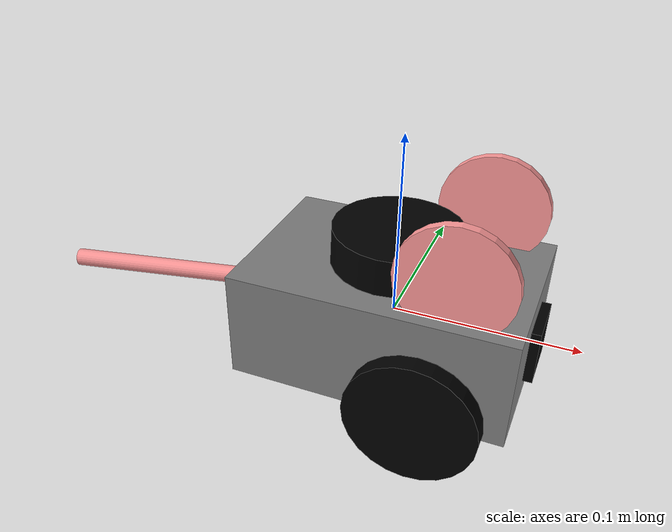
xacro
<?xml version="1.0"?>
<robot name="mouse" xmlns:xacro="http://www.ros.org/wiki/xacro">

    <xacro:arg name="robot_name" default="mouse"/>

    <xacro:property name="body_len" value="0.15"/>
    <xacro:property name="body_width" value="0.10"/>
    <xacro:property name="body_height" value="0.06"/>
    <xacro:property name="body_mass" value="2"/>

    <xacro:property name="wheel_radius" value="0.035"/>
    <xacro:property name="wheel_width" value="0.01"/>
    <xacro:property name="wheel_mass" value="0.1"/>

    <material name="grey"><color rgba="0.5 0.5 0.5 1"/></material>
    <material name="pink"><color rgba="1 0.6 0.6 1"/></material>
    <material name="black"><color rgba="0 0 0 1"/></material>

    <xacro:macro name="box_inertia" params="m x y z">
        <inertial>
            <mass value="${m}"/>
            <inertia ixx="${m*(y*y+z*z)/12}" ixy="0" ixz="0"
                     iyy="${m*(x*x+z*z)/12}" iyz="0"
                     izz="${m*(x*x+y*y)/12}"/>
        </inertial>
    </xacro:macro>

    <xacro:macro name="cylinder_inertia" params="m r h">
        <inertial>
            <mass value="${m}"/>
            <inertia ixx="${m*(3*r*r+h*h)/12}" ixy="0" ixz="0"
                     iyy="${m*(3*r*r+h*h)/12}" iyz="0"
                     izz="${m*r*r/2}"/>
        </inertial>
    </xacro:macro>

    <xacro:macro name="sphere_inertia" params="m r">
        <inertial>
            <mass value="${m}"/>
            <inertia ixx="${2*m*r*r/5}" ixy="0" ixz="0"
                     iyy="${2*m*r*r/5}" iyz="0"
                     izz="${2*m*r*r/5}"/>
        </inertial>
    </xacro:macro>

    <link name="$(arg robot_name)/base_link">
        <visual>
            <geometry><box size="${body_len} ${body_width} ${body_height}"/></geometry>
            <material name="grey"/>
        </visual>
        <collision>
            <geometry><box size="${body_len} ${body_width} ${body_height}"/></geometry>
        </collision>
        <inertial>
            <mass value="2.0"/>

            <origin xyz="0 0 -0.05" rpy="0 0 0"/>

            <inertia
                ixx="${2.0*(body_width*body_width + body_height*body_height)/12}" ixy="0" ixz="0"
                iyy="${2.0*(body_len*body_len + body_height*body_height)/12}" iyz="0"
                izz="${2.0*(body_len*body_len + body_width*body_width)/12}"/>
        </inertial>
    </link>

    <gazebo reference="$(arg robot_name)/base_link">
        <material>Gazebo/Grey</material>
    </gazebo>

    <xacro:macro name="ear" params="prefix y_pos">
        <link name="$(arg robot_name)/${prefix}_ear">
            <visual>
                <origin xyz="0 0 0" rpy="1.5707 0 0"/>
                <geometry><cylinder radius="0.03" length="0.005"/></geometry>
                <material name="pink"/>
            </visual>
            <xacro:cylinder_inertia m="0.05" r="0.03" h="0.005"/>
        </link>

        <joint name="$(arg robot_name)/${prefix}_ear_joint" type="fixed">
            <parent link="$(arg robot_name)/base_link"/>
            <child link="$(arg robot_name)/${prefix}_ear"/>
            <origin xyz="0.04 ${y_pos} ${body_height/2 + 0.02}" rpy="0 0 0"/>
        </joint>

        <gazebo reference="$(arg robot_name)/${prefix}_ear">
            <material>Gazebo/RedBright</material>
        </gazebo>
    </xacro:macro>

    <xacro:ear prefix="left" y_pos="0.04"/>
    <xacro:ear prefix="right" y_pos="-0.04"/>

    <link name="$(arg robot_name)/tail">
        <visual>
            <origin xyz="-0.06 0 0" rpy="0 1.57 0"/> <geometry><cylinder radius="0.005" length="0.12"/></geometry>
            <material name="pink"/>
        </visual>
        <xacro:cylinder_inertia m="0.05" r="0.005" h="0.12"/>
    </link>

    <joint name="$(arg robot_name)/tail_joint" type="fixed">
        <parent link="$(arg robot_name)/base_link"/>
        <child link="$(arg robot_name)/tail"/>
        <origin xyz="-${body_len/2} 0 0" rpy="0 0 0.2"/>
    </joint>

    <xacro:macro name="wheel" params="prefix y_pos">
        <link name="$(arg robot_name)/${prefix}_wheel">
            <visual>
                <origin xyz="0 0 0" rpy="1.5707 0 0"/>
                <geometry><cylinder radius="${wheel_radius}" length="${wheel_width}"/></geometry>
                <material name="black"/>
            </visual>
            <collision>
                <origin xyz="0 0 0" rpy="1.5707 0 0"/>
                <geometry><cylinder radius="${wheel_radius}" length="${wheel_width}"/></geometry>
            </collision>
            <xacro:cylinder_inertia m="${wheel_mass}" r="${wheel_radius}" h="${wheel_width}"/>
        </link>

        <joint name="$(arg robot_name)/${prefix}_wheel_joint" type="continuous">
            <parent link="$(arg robot_name)/base_link"/>
            <child link="$(arg robot_name)/${prefix}_wheel"/>
            <origin xyz="0.03 ${y_pos} -0.02" rpy="0 0 0"/> <axis xyz="0 1 0"/>

            <limit effort="100" velocity="20.0"/>
        </joint>

        <gazebo reference="$(arg robot_name)/${prefix}_wheel">
            <material>Gazebo/Black</material>
        </gazebo>
    </xacro:macro>

    <xacro:wheel prefix="left" y_pos="0.06"/>
    <xacro:wheel prefix="right" y_pos="-0.06"/>

    <link name="$(arg robot_name)/caster_wheel">
        <visual>
            <geometry><sphere radius="${wheel_radius/2}"/></geometry>
            <material name="black"/>
        </visual>
        <collision>
            <geometry><sphere radius="${wheel_radius/2}"/></geometry>
        </collision>
        <xacro:sphere_inertia m="0.05" r="${wheel_radius/2}"/>
    </link>

    <joint name="$(arg robot_name)/caster_joint" type="fixed">
        <parent link="$(arg robot_name)/base_link"/>
        <child link="$(arg robot_name)/caster_wheel"/>
        <origin xyz="-0.06 0 -0.035" rpy="0 0 0"/>
    </joint>

    <gazebo reference="$(arg robot_name)/caster_wheel">
        <mu1>0.001</mu1>
        <mu2>0.001</mu2>
        <material>Gazebo/Black</material>
    </gazebo>

    <link name="$(arg robot_name)/lidar_link">
        <visual>
            <geometry><cylinder radius="0.035" length="0.02"/></geometry>
            <material name="black"/>
        </visual>
        <collision>
            <geometry><cylinder radius="0.035" length="0.02"/></geometry>
        </collision>
        <xacro:cylinder_inertia m="0.1" r="0.035" h="0.02"/>
    </link>

    <joint name="$(arg robot_name)/lidar_joint" type="fixed">
        <parent link="$(arg robot_name)/base_link"/>
        <child link="$(arg robot_name)/lidar_link"/>
        <origin xyz="0 0 ${body_height/2 + 0.01}" rpy="0 0.03 0"/>
    </joint>

    <gazebo reference="$(arg robot_name)/lidar_link">
        <sensor name="lidar" type="gpu_lidar">
            <frame_id>lidar_link</frame_id>
            <pose>0 0 0 0 0 0</pose>
            <always_on>true</always_on>
            <visualize>true</visualize>
            <update_rate>40</update_rate>
            <topic>/model/$(arg robot_name)/scan</topic>
            <ray>
                <scan>
                    <horizontal>
                        <samples>720</samples>
                        <resolution>1</resolution>
                        <min_angle>-3.14</min_angle>
                        <max_angle>3.14</max_angle>
                    </horizontal>
                </scan>
                <range>
                    <min>0.15</min> <max>12.0</max>
                </range>
            </ray>
        </sensor>
        <material>Gazebo/Black</material>
    </gazebo>

    <link name="$(arg robot_name)/camera_link">
        <visual>
            <geometry><box size="0.01 0.03 0.03"/></geometry>
            <material name="black"/>
        </visual>
        <collision>
            <geometry><box size="0.01 0.03 0.03"/></geometry>
        </collision>
        <xacro:box_inertia m="0.05" x="0.01" y="0.03" z="0.03"/>
    </link>

    <joint name="$(arg robot_name)/camera_joint" type="fixed">
        <parent link="$(arg robot_name)/base_link"/>
        <child link="$(arg robot_name)/camera_link"/>
        <origin xyz="${body_len/2} 0 0" rpy="0 0 0"/>
    </joint>

    <gazebo reference="$(arg robot_name)/camera_link">
        <sensor name="camera" type="camera">
            <camera>
                <horizontal_fov>2.0944</horizontal_fov>
                <image>
                    <width>640</width>
                    <height>480</height>
                </image>
                <clip>
                    <near>0.1</near>
                    <far>100</far>
                </clip>
            </camera>
            <always_on>1</always_on>
            <update_rate>30</update_rate>
            <visualize>true</visualize>
            <topic>/model/$(arg robot_name)/camera/image_raw</topic>
        </sensor>
    </gazebo>

    <link name="$(arg robot_name)/imu_link">
        <visual><geometry><box size="0.01 0.01 0.01"/></geometry></visual>
        <xacro:box_inertia m="0.01" x="0.01" y="0.01" z="0.01"/>
    </link>

    <joint name="$(arg robot_name)/imu_joint" type="fixed">
        <parent link="$(arg robot_name)/base_link"/>
        <child link="$(arg robot_name)/imu_link"/>
        <origin xyz="0 0 0" rpy="0 0 0"/>
    </joint>

    <gazebo reference="$(arg robot_name)/imu_link">
        <sensor name="imu" type="imu">
            <always_on>true</always_on>
            <update_rate>100</update_rate>
            <topic>/model/$(arg robot_name)/imu</topic>
        </sensor>
    </gazebo>

    <gazebo>
        <plugin filename="gz-sim-joint-state-publisher-system" name="gz::sim::systems::JointStatePublisher">
            <topic>/model/$(arg robot_name)/joint_states</topic>
        </plugin>

        <plugin
            filename="gz-sim-diff-drive-system"
            name="gz::sim::systems::DiffDrive">
            <left_joint>$(arg robot_name)/left_wheel_joint</left_joint>
            <right_joint>$(arg robot_name)/right_wheel_joint</right_joint>
            <wheel_separation>0.12</wheel_separation>
            <wheel_radius>${wheel_radius}</wheel_radius>

            <topic>/model/$(arg robot_name)/cmd_vel</topic>

            <odom_topic>/model/$(arg robot_name)/odometry_noisy_ignore</odom_topic>
            <tf_topic>/model/$(arg robot_name)/tf_noisy_ignore</tf_topic>

            <frame_id>$(arg robot_name)/odom</frame_id>
            <child_frame_id>$(arg robot_name)/base_link</child_frame_id>
        </plugin>

        <plugin
            filename="gz-sim-odometry-publisher-system"
            name="gz::sim::systems::OdometryPublisher">
            <dimensions>3</dimensions>

            <topic>/model/$(arg robot_name)/odometry</topic>
            <tf_topic>/model/$(arg robot_name)/tf</tf_topic>

            <odom_frame>$(arg robot_name)/odom</odom_frame>

            <robot_base_frame>$(arg robot_name)/base_link</robot_base_frame>
            <odom_publish_frequency>50</odom_publish_frequency>
        </plugin>
    </gazebo>

</robot>
